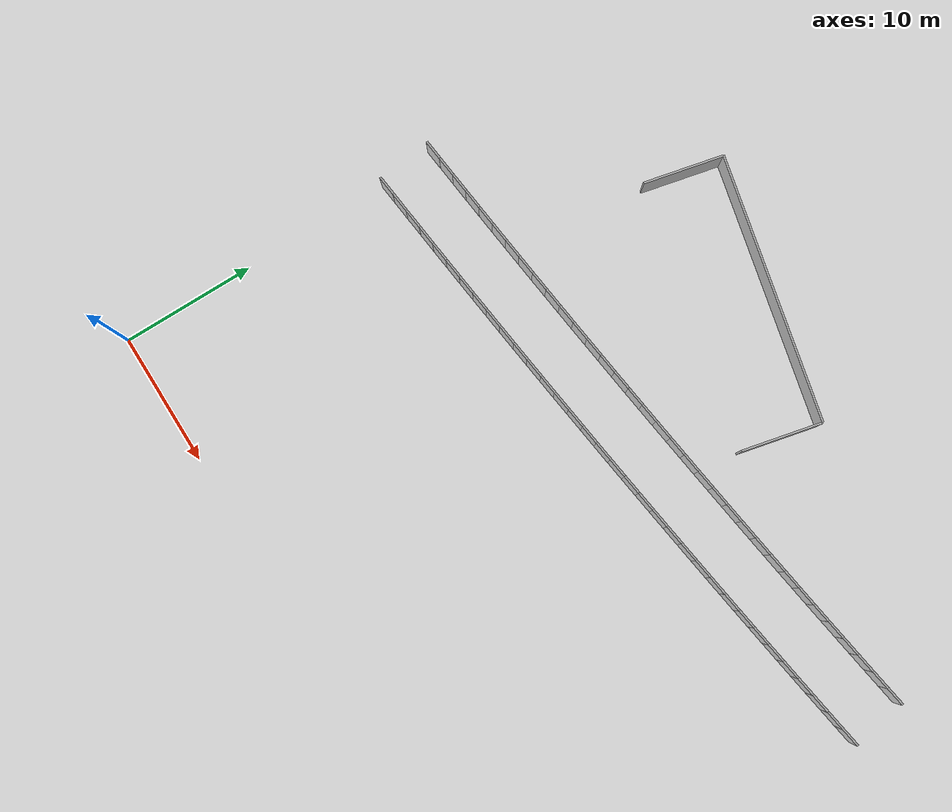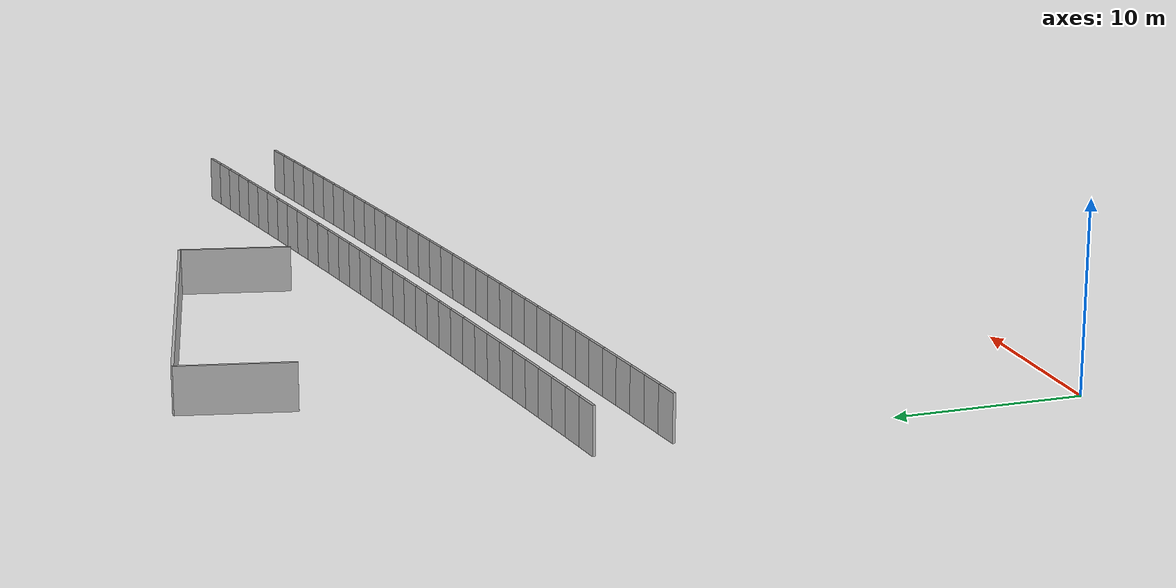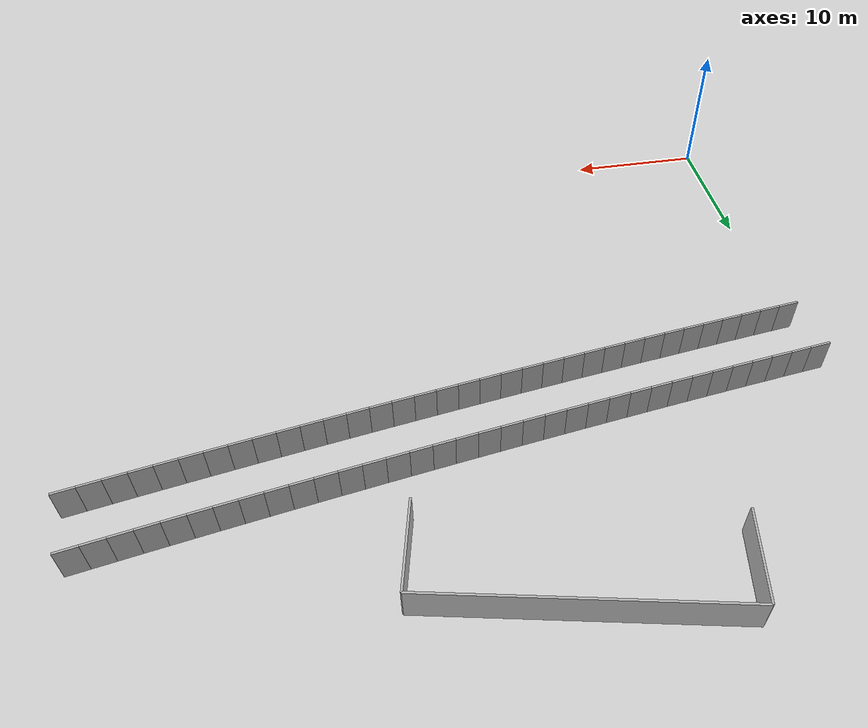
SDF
<?xml version="1.0" ?>
<sdf version="1.6">
  <model name="sps_2803">
    <pose frame="">0 0 0 0 -0 0</pose>
    <static>1</static>
    <self_collide>0</self_collide>
    <allow_auto_disable>0</allow_auto_disable>
    <link name="Wall137">
      <kinematic>0</kinematic>
      <gravity>1</gravity>
      <self_collide>0</self_collide>
      <collision name="collision">
        <geometry>
          <box>
            <size>20 0.15 2.5</size>
          </box>
        </geometry>
        <pose frame="">0 0 0 0 -0 0</pose>
      </collision>
      <visual name="visual">
        <geometry>
          <box>
            <size>20 0.15 2.5</size>
          </box>
        </geometry>
        <pose frame="">0 0 0 0 -0 0</pose>
        <cast_shadows>1</cast_shadows>
        <transparency>0.0</transparency>
      </visual>
      <pose frame="">21.0121 40.5186 1.25 0 0 -0.214245</pose>
    </link>
    <link name="Wall240">
      <kinematic>0</kinematic>
      <gravity>1</gravity>
      <self_collide>0</self_collide>
      <collision name="collision">
        <geometry>
          <box>
            <size>5.9893 0.15 2.5</size>
          </box>
        </geometry>
        <pose frame="">0 0 0 0 -0 0</pose>
      </collision>
      <visual name="visual">
        <geometry>
          <box>
            <size>5.9893 0.15 2.5</size>
          </box>
        </geometry>
        <pose frame="">0 0 0 0 -0 0</pose>
        <cast_shadows>1</cast_shadows>
        <transparency>0.0</transparency>
      </visual>
      <pose frame="">30.1468 35.4663 1.25 0 0 -1.78505</pose>
    </link>
    <link name="Wall374">
      <kinematic>0</kinematic>
      <gravity>1</gravity>
      <self_collide>0</self_collide>
      <collision name="collision">
        <geometry>
          <box>
            <size>5.9893 0.15 2.5</size>
          </box>
        </geometry>
        <pose frame="">0 0 0 0 -0 0</pose>
      </collision>
      <visual name="visual">
        <geometry>
          <box>
            <size>5.9893 0.15 2.5</size>
          </box>
        </geometry>
        <pose frame="">0 0 0 0 -0 0</pose>
        <cast_shadows>1</cast_shadows>
        <transparency>0.0</transparency>
      </visual>
      <pose frame="">10.604 39.7185 1.25 0 0 -1.78505</pose>
    </link>
    <link name="Wall3738">
      <kinematic>0</kinematic>
      <gravity>1</gravity>
      <self_collide>0</self_collide>
      <collision name="collision">
        <geometry>
          <box>
            <size>1.49654 0.15 2.5</size>
          </box>
        </geometry>
        <pose frame="">0 0 0 0 -0 0</pose>
      </collision>
      <visual name="visual">
        <geometry>
          <box>
            <size>1.49654 0.15 2.5</size>
          </box>
        </geometry>
        <pose frame="">0 0 0 0 -0 0</pose>
        <cast_shadows>1</cast_shadows>
        <transparency>0.0</transparency>
      </visual>
      <pose frame="">0.206657 25.4595 1.25 0 -0 0.116539</pose>
    </link>
    <link name="Wall3739">
      <kinematic>0</kinematic>
      <gravity>1</gravity>
      <self_collide>0</self_collide>
      <collision name="collision">
        <geometry>
          <box>
            <size>1.49646 0.15 2.5</size>
          </box>
        </geometry>
        <pose frame="">0 0 0 0 -0 0</pose>
      </collision>
      <visual name="visual">
        <geometry>
          <box>
            <size>1.49646 0.15 2.5</size>
          </box>
        </geometry>
        <pose frame="">0 0 0 0 -0 0</pose>
        <cast_shadows>1</cast_shadows>
        <transparency>0.0</transparency>
      </visual>
      <pose frame="">1.69286 25.6347 1.25 0 -0 0.118148</pose>
    </link>
    <link name="Wall3740">
      <kinematic>0</kinematic>
      <gravity>1</gravity>
      <self_collide>0</self_collide>
      <collision name="collision">
        <geometry>
          <box>
            <size>1.49652 0.15 2.5</size>
          </box>
        </geometry>
        <pose frame="">0 0 0 0 -0 0</pose>
      </collision>
      <visual name="visual">
        <geometry>
          <box>
            <size>1.49652 0.15 2.5</size>
          </box>
        </geometry>
        <pose frame="">0 0 0 0 -0 0</pose>
        <cast_shadows>1</cast_shadows>
        <transparency>0.0</transparency>
      </visual>
      <pose frame="">3.17876 25.8124 1.25 0 -0 0.119868</pose>
    </link>
    <link name="Wall3741">
      <kinematic>0</kinematic>
      <gravity>1</gravity>
      <self_collide>0</self_collide>
      <collision name="collision">
        <geometry>
          <box>
            <size>1.4964 0.15 2.5</size>
          </box>
        </geometry>
        <pose frame="">0 0 0 0 -0 0</pose>
      </collision>
      <visual name="visual">
        <geometry>
          <box>
            <size>1.4964 0.15 2.5</size>
          </box>
        </geometry>
        <pose frame="">0 0 0 0 -0 0</pose>
        <cast_shadows>1</cast_shadows>
        <transparency>0.0</transparency>
      </visual>
      <pose frame="">4.66436 25.9924 1.25 0 -0 0.121274</pose>
    </link>
    <link name="Wall3742">
      <kinematic>0</kinematic>
      <gravity>1</gravity>
      <self_collide>0</self_collide>
      <collision name="collision">
        <geometry>
          <box>
            <size>1.49645 0.15 2.5</size>
          </box>
        </geometry>
        <pose frame="">0 0 0 0 -0 0</pose>
      </collision>
      <visual name="visual">
        <geometry>
          <box>
            <size>1.49645 0.15 2.5</size>
          </box>
        </geometry>
        <pose frame="">0 0 0 0 -0 0</pose>
        <cast_shadows>1</cast_shadows>
        <transparency>0.0</transparency>
      </visual>
      <pose frame="">6.14965 26.1746 1.25 0 -0 0.122873</pose>
    </link>
    <link name="Wall3743">
      <kinematic>0</kinematic>
      <gravity>1</gravity>
      <self_collide>0</self_collide>
      <collision name="collision">
        <geometry>
          <box>
            <size>1.4964 0.15 2.5</size>
          </box>
        </geometry>
        <pose frame="">0 0 0 0 -0 0</pose>
      </collision>
      <visual name="visual">
        <geometry>
          <box>
            <size>1.4964 0.15 2.5</size>
          </box>
        </geometry>
        <pose frame="">0 0 0 0 -0 0</pose>
        <cast_shadows>1</cast_shadows>
        <transparency>0.0</transparency>
      </visual>
      <pose frame="">7.63464 26.3593 1.25 0 -0 0.124603</pose>
    </link>
    <link name="Wall3744">
      <kinematic>0</kinematic>
      <gravity>1</gravity>
      <self_collide>0</self_collide>
      <collision name="collision">
        <geometry>
          <box>
            <size>1.49666 0.15 2.5</size>
          </box>
        </geometry>
        <pose frame="">0 0 0 0 -0 0</pose>
      </collision>
      <visual name="visual">
        <geometry>
          <box>
            <size>1.49666 0.15 2.5</size>
          </box>
        </geometry>
        <pose frame="">0 0 0 0 -0 0</pose>
        <cast_shadows>1</cast_shadows>
        <transparency>0.0</transparency>
      </visual>
      <pose frame="">9.11944 26.5463 1.25 0 -0 0.125938</pose>
    </link>
    <link name="Wall3745">
      <kinematic>0</kinematic>
      <gravity>1</gravity>
      <self_collide>0</self_collide>
      <collision name="collision">
        <geometry>
          <box>
            <size>1.49662 0.15 2.5</size>
          </box>
        </geometry>
        <pose frame="">0 0 0 0 -0 0</pose>
      </collision>
      <visual name="visual">
        <geometry>
          <box>
            <size>1.49662 0.15 2.5</size>
          </box>
        </geometry>
        <pose frame="">0 0 0 0 -0 0</pose>
        <cast_shadows>1</cast_shadows>
        <transparency>0.0</transparency>
      </visual>
      <pose frame="">10.6041 26.7356 1.25 0 -0 0.127709</pose>
    </link>
    <link name="Wall3746">
      <kinematic>0</kinematic>
      <gravity>1</gravity>
      <self_collide>0</self_collide>
      <collision name="collision">
        <geometry>
          <box>
            <size>1.49651 0.15 2.5</size>
          </box>
        </geometry>
        <pose frame="">0 0 0 0 -0 0</pose>
      </collision>
      <visual name="visual">
        <geometry>
          <box>
            <size>1.49651 0.15 2.5</size>
          </box>
        </geometry>
        <pose frame="">0 0 0 0 -0 0</pose>
        <cast_shadows>1</cast_shadows>
        <transparency>0.0</transparency>
      </visual>
      <pose frame="">12.0883 26.9274 1.25 0 -0 0.129323</pose>
    </link>
    <link name="Wall3747">
      <kinematic>0</kinematic>
      <gravity>1</gravity>
      <self_collide>0</self_collide>
      <collision name="collision">
        <geometry>
          <box>
            <size>1.49655 0.15 2.5</size>
          </box>
        </geometry>
        <pose frame="">0 0 0 0 -0 0</pose>
      </collision>
      <visual name="visual">
        <geometry>
          <box>
            <size>1.49655 0.15 2.5</size>
          </box>
        </geometry>
        <pose frame="">0 0 0 0 -0 0</pose>
        <cast_shadows>1</cast_shadows>
        <transparency>0.0</transparency>
      </visual>
      <pose frame="">13.5722 27.1215 1.25 0 -0 0.1308</pose>
    </link>
    <link name="Wall3748">
      <kinematic>0</kinematic>
      <gravity>1</gravity>
      <self_collide>0</self_collide>
      <collision name="collision">
        <geometry>
          <box>
            <size>1.49651 0.15 2.5</size>
          </box>
        </geometry>
        <pose frame="">0 0 0 0 -0 0</pose>
      </collision>
      <visual name="visual">
        <geometry>
          <box>
            <size>1.49651 0.15 2.5</size>
          </box>
        </geometry>
        <pose frame="">0 0 0 0 -0 0</pose>
        <cast_shadows>1</cast_shadows>
        <transparency>0.0</transparency>
      </visual>
      <pose frame="">15.0557 27.3179 1.25 0 -0 0.132449</pose>
    </link>
    <link name="Wall3749">
      <kinematic>0</kinematic>
      <gravity>1</gravity>
      <self_collide>0</self_collide>
      <collision name="collision">
        <geometry>
          <box>
            <size>1.49664 0.15 2.5</size>
          </box>
        </geometry>
        <pose frame="">0 0 0 0 -0 0</pose>
      </collision>
      <visual name="visual">
        <geometry>
          <box>
            <size>1.49664 0.15 2.5</size>
          </box>
        </geometry>
        <pose frame="">0 0 0 0 -0 0</pose>
        <cast_shadows>1</cast_shadows>
        <transparency>0.0</transparency>
      </visual>
      <pose frame="">16.5391 27.5167 1.25 0 -0 0.134042</pose>
    </link>
    <link name="Wall3750">
      <kinematic>0</kinematic>
      <gravity>1</gravity>
      <self_collide>0</self_collide>
      <collision name="collision">
        <geometry>
          <box>
            <size>1.49651 0.15 2.5</size>
          </box>
        </geometry>
        <pose frame="">0 0 0 0 -0 0</pose>
      </collision>
      <visual name="visual">
        <geometry>
          <box>
            <size>1.49651 0.15 2.5</size>
          </box>
        </geometry>
        <pose frame="">0 0 0 0 -0 0</pose>
        <cast_shadows>1</cast_shadows>
        <transparency>0.0</transparency>
      </visual>
      <pose frame="">18.0221 27.7178 1.25 0 -0 0.135535</pose>
    </link>
    <link name="Wall3751">
      <kinematic>0</kinematic>
      <gravity>1</gravity>
      <self_collide>0</self_collide>
      <collision name="collision">
        <geometry>
          <box>
            <size>1.4965 0.15 2.5</size>
          </box>
        </geometry>
        <pose frame="">0 0 0 0 -0 0</pose>
      </collision>
      <visual name="visual">
        <geometry>
          <box>
            <size>1.4965 0.15 2.5</size>
          </box>
        </geometry>
        <pose frame="">0 0 0 0 -0 0</pose>
        <cast_shadows>1</cast_shadows>
        <transparency>0.0</transparency>
      </visual>
      <pose frame="">19.5047 27.9213 1.25 0 -0 0.137265</pose>
    </link>
    <link name="Wall3752">
      <kinematic>0</kinematic>
      <gravity>1</gravity>
      <self_collide>0</self_collide>
      <collision name="collision">
        <geometry>
          <box>
            <size>1.49656 0.15 2.5</size>
          </box>
        </geometry>
        <pose frame="">0 0 0 0 -0 0</pose>
      </collision>
      <visual name="visual">
        <geometry>
          <box>
            <size>1.49656 0.15 2.5</size>
          </box>
        </geometry>
        <pose frame="">0 0 0 0 -0 0</pose>
        <cast_shadows>1</cast_shadows>
        <transparency>0.0</transparency>
      </visual>
      <pose frame="">20.987 28.1272 1.25 0 -0 0.138742</pose>
    </link>
    <link name="Wall3753">
      <kinematic>0</kinematic>
      <gravity>1</gravity>
      <self_collide>0</self_collide>
      <collision name="collision">
        <geometry>
          <box>
            <size>1.49654 0.15 2.5</size>
          </box>
        </geometry>
        <pose frame="">0 0 0 0 -0 0</pose>
      </collision>
      <visual name="visual">
        <geometry>
          <box>
            <size>1.49654 0.15 2.5</size>
          </box>
        </geometry>
        <pose frame="">0 0 0 0 -0 0</pose>
        <cast_shadows>1</cast_shadows>
        <transparency>0.0</transparency>
      </visual>
      <pose frame="">22.469 28.3354 1.25 0 -0 0.140392</pose>
    </link>
    <link name="Wall3754">
      <kinematic>0</kinematic>
      <gravity>1</gravity>
      <self_collide>0</self_collide>
      <collision name="collision">
        <geometry>
          <box>
            <size>1.49642 0.15 2.5</size>
          </box>
        </geometry>
        <pose frame="">0 0 0 0 -0 0</pose>
      </collision>
      <visual name="visual">
        <geometry>
          <box>
            <size>1.49642 0.15 2.5</size>
          </box>
        </geometry>
        <pose frame="">0 0 0 0 -0 0</pose>
        <cast_shadows>1</cast_shadows>
        <transparency>0.0</transparency>
      </visual>
      <pose frame="">23.9506 28.5459 1.25 0 -0 0.141886</pose>
    </link>
    <link name="Wall3755">
      <kinematic>0</kinematic>
      <gravity>1</gravity>
      <self_collide>0</self_collide>
      <collision name="collision">
        <geometry>
          <box>
            <size>1.49658 0.15 2.5</size>
          </box>
        </geometry>
        <pose frame="">0 0 0 0 -0 0</pose>
      </collision>
      <visual name="visual">
        <geometry>
          <box>
            <size>1.49658 0.15 2.5</size>
          </box>
        </geometry>
        <pose frame="">0 0 0 0 -0 0</pose>
        <cast_shadows>1</cast_shadows>
        <transparency>0.0</transparency>
      </visual>
      <pose frame="">25.4318 28.7587 1.25 0 -0 0.143477</pose>
    </link>
    <link name="Wall3756">
      <kinematic>0</kinematic>
      <gravity>1</gravity>
      <self_collide>0</self_collide>
      <collision name="collision">
        <geometry>
          <box>
            <size>1.49659 0.15 2.5</size>
          </box>
        </geometry>
        <pose frame="">0 0 0 0 -0 0</pose>
      </collision>
      <visual name="visual">
        <geometry>
          <box>
            <size>1.49659 0.15 2.5</size>
          </box>
        </geometry>
        <pose frame="">0 0 0 0 -0 0</pose>
        <cast_shadows>1</cast_shadows>
        <transparency>0.0</transparency>
      </visual>
      <pose frame="">26.9129 28.974 1.25 0 -0 0.145248</pose>
    </link>
    <link name="Wall3757">
      <kinematic>0</kinematic>
      <gravity>1</gravity>
      <self_collide>0</self_collide>
      <collision name="collision">
        <geometry>
          <box>
            <size>1.49665 0.15 2.5</size>
          </box>
        </geometry>
        <pose frame="">0 0 0 0 -0 0</pose>
      </collision>
      <visual name="visual">
        <geometry>
          <box>
            <size>1.49665 0.15 2.5</size>
          </box>
        </geometry>
        <pose frame="">0 0 0 0 -0 0</pose>
        <cast_shadows>1</cast_shadows>
        <transparency>0.0</transparency>
      </visual>
      <pose frame="">28.3936 29.1916 1.25 0 -0 0.146603</pose>
    </link>
    <link name="Wall3758">
      <kinematic>0</kinematic>
      <gravity>1</gravity>
      <self_collide>0</self_collide>
      <collision name="collision">
        <geometry>
          <box>
            <size>1.4966 0.15 2.5</size>
          </box>
        </geometry>
        <pose frame="">0 0 0 0 -0 0</pose>
      </collision>
      <visual name="visual">
        <geometry>
          <box>
            <size>1.4966 0.15 2.5</size>
          </box>
        </geometry>
        <pose frame="">0 0 0 0 -0 0</pose>
        <cast_shadows>1</cast_shadows>
        <transparency>0.0</transparency>
      </visual>
      <pose frame="">29.874 29.4115 1.25 0 -0 0.148339</pose>
    </link>
    <link name="Wall3759">
      <kinematic>0</kinematic>
      <gravity>1</gravity>
      <self_collide>0</self_collide>
      <collision name="collision">
        <geometry>
          <box>
            <size>1.49638 0.15 2.5</size>
          </box>
        </geometry>
        <pose frame="">0 0 0 0 -0 0</pose>
      </collision>
      <visual name="visual">
        <geometry>
          <box>
            <size>1.49638 0.15 2.5</size>
          </box>
        </geometry>
        <pose frame="">0 0 0 0 -0 0</pose>
        <cast_shadows>1</cast_shadows>
        <transparency>0.0</transparency>
      </visual>
      <pose frame="">31.3538 29.6338 1.25 0 -0 0.149846</pose>
    </link>
    <link name="Wall3760">
      <kinematic>0</kinematic>
      <gravity>1</gravity>
      <self_collide>0</self_collide>
      <collision name="collision">
        <geometry>
          <box>
            <size>1.49656 0.15 2.5</size>
          </box>
        </geometry>
        <pose frame="">0 0 0 0 -0 0</pose>
      </collision>
      <visual name="visual">
        <geometry>
          <box>
            <size>1.49656 0.15 2.5</size>
          </box>
        </geometry>
        <pose frame="">0 0 0 0 -0 0</pose>
        <cast_shadows>1</cast_shadows>
        <transparency>0.0</transparency>
      </visual>
      <pose frame="">32.8334 29.8584 1.25 0 -0 0.151437</pose>
    </link>
    <link name="Wall3761">
      <kinematic>0</kinematic>
      <gravity>1</gravity>
      <self_collide>0</self_collide>
      <collision name="collision">
        <geometry>
          <box>
            <size>1.49651 0.15 2.5</size>
          </box>
        </geometry>
        <pose frame="">0 0 0 0 -0 0</pose>
      </collision>
      <visual name="visual">
        <geometry>
          <box>
            <size>1.49651 0.15 2.5</size>
          </box>
        </geometry>
        <pose frame="">0 0 0 0 -0 0</pose>
        <cast_shadows>1</cast_shadows>
        <transparency>0.0</transparency>
      </visual>
      <pose frame="">34.3126 30.0854 1.25 0 -0 0.153093</pose>
    </link>
    <link name="Wall3762">
      <kinematic>0</kinematic>
      <gravity>1</gravity>
      <self_collide>0</self_collide>
      <collision name="collision">
        <geometry>
          <box>
            <size>1.49642 0.15 2.5</size>
          </box>
        </geometry>
        <pose frame="">0 0 0 0 -0 0</pose>
      </collision>
      <visual name="visual">
        <geometry>
          <box>
            <size>1.49642 0.15 2.5</size>
          </box>
        </geometry>
        <pose frame="">0 0 0 0 -0 0</pose>
        <cast_shadows>1</cast_shadows>
        <transparency>0.0</transparency>
      </visual>
      <pose frame="">35.7914 30.3147 1.25 0 -0 0.154587</pose>
    </link>
    <link name="Wall3763">
      <kinematic>0</kinematic>
      <gravity>1</gravity>
      <self_collide>0</self_collide>
      <collision name="collision">
        <geometry>
          <box>
            <size>1.49661 0.15 2.5</size>
          </box>
        </geometry>
        <pose frame="">0 0 0 0 -0 0</pose>
      </collision>
      <visual name="visual">
        <geometry>
          <box>
            <size>1.49661 0.15 2.5</size>
          </box>
        </geometry>
        <pose frame="">0 0 0 0 -0 0</pose>
        <cast_shadows>1</cast_shadows>
        <transparency>0.0</transparency>
      </visual>
      <pose frame="">37.2699 30.5463 1.25 0 -0 0.156178</pose>
    </link>
    <link name="Wall3764">
      <kinematic>0</kinematic>
      <gravity>1</gravity>
      <self_collide>0</self_collide>
      <collision name="collision">
        <geometry>
          <box>
            <size>1.4966 0.15 2.5</size>
          </box>
        </geometry>
        <pose frame="">0 0 0 0 -0 0</pose>
      </collision>
      <visual name="visual">
        <geometry>
          <box>
            <size>1.4966 0.15 2.5</size>
          </box>
        </geometry>
        <pose frame="">0 0 0 0 -0 0</pose>
        <cast_shadows>1</cast_shadows>
        <transparency>0.0</transparency>
      </visual>
      <pose frame="">38.7481 30.7802 1.25 0 -0 0.157706</pose>
    </link>
    <link name="Wall3765">
      <kinematic>0</kinematic>
      <gravity>1</gravity>
      <self_collide>0</self_collide>
      <collision name="collision">
        <geometry>
          <box>
            <size>1.49657 0.15 2.5</size>
          </box>
        </geometry>
        <pose frame="">0 0 0 0 -0 0</pose>
      </collision>
      <visual name="visual">
        <geometry>
          <box>
            <size>1.49657 0.15 2.5</size>
          </box>
        </geometry>
        <pose frame="">0 0 0 0 -0 0</pose>
        <cast_shadows>1</cast_shadows>
        <transparency>0.0</transparency>
      </visual>
      <pose frame="">40.2259 31.0165 1.25 0 -0 0.159403</pose>
    </link>
    <link name="Wall3766">
      <kinematic>0</kinematic>
      <gravity>1</gravity>
      <self_collide>0</self_collide>
      <collision name="collision">
        <geometry>
          <box>
            <size>1.49651 0.15 2.5</size>
          </box>
        </geometry>
        <pose frame="">0 0 0 0 -0 0</pose>
      </collision>
      <visual name="visual">
        <geometry>
          <box>
            <size>1.49651 0.15 2.5</size>
          </box>
        </geometry>
        <pose frame="">0 0 0 0 -0 0</pose>
        <cast_shadows>1</cast_shadows>
        <transparency>0.0</transparency>
      </visual>
      <pose frame="">41.7033 31.2552 1.25 0 -0 0.160938</pose>
    </link>
    <link name="Wall3767">
      <kinematic>0</kinematic>
      <gravity>1</gravity>
      <self_collide>0</self_collide>
      <collision name="collision">
        <geometry>
          <box>
            <size>1.49653 0.15 2.5</size>
          </box>
        </geometry>
        <pose frame="">0 0 0 0 -0 0</pose>
      </collision>
      <visual name="visual">
        <geometry>
          <box>
            <size>1.49653 0.15 2.5</size>
          </box>
        </geometry>
        <pose frame="">0 0 0 0 -0 0</pose>
        <cast_shadows>1</cast_shadows>
        <transparency>0.0</transparency>
      </visual>
      <pose frame="">43.1803 31.4962 1.25 0 -0 0.162547</pose>
    </link>
    <link name="Wall3768">
      <kinematic>0</kinematic>
      <gravity>1</gravity>
      <self_collide>0</self_collide>
      <collision name="collision">
        <geometry>
          <box>
            <size>1.49648 0.15 2.5</size>
          </box>
        </geometry>
        <pose frame="">0 0 0 0 -0 0</pose>
      </collision>
      <visual name="visual">
        <geometry>
          <box>
            <size>1.49648 0.15 2.5</size>
          </box>
        </geometry>
        <pose frame="">0 0 0 0 -0 0</pose>
        <cast_shadows>1</cast_shadows>
        <transparency>0.0</transparency>
      </visual>
      <pose frame="">44.6569 31.7395 1.25 0 -0 0.164083</pose>
    </link>
    <link name="Wall3769">
      <kinematic>0</kinematic>
      <gravity>1</gravity>
      <self_collide>0</self_collide>
      <collision name="collision">
        <geometry>
          <box>
            <size>1.4965 0.15 2.5</size>
          </box>
        </geometry>
        <pose frame="">0 0 0 0 -0 0</pose>
      </collision>
      <visual name="visual">
        <geometry>
          <box>
            <size>1.4965 0.15 2.5</size>
          </box>
        </geometry>
        <pose frame="">0 0 0 0 -0 0</pose>
        <cast_shadows>1</cast_shadows>
        <transparency>0.0</transparency>
      </visual>
      <pose frame="">46.133 31.9851 1.25 0 -0 0.165652</pose>
    </link>
    <link name="Wall3770">
      <kinematic>0</kinematic>
      <gravity>1</gravity>
      <self_collide>0</self_collide>
      <collision name="collision">
        <geometry>
          <box>
            <size>1.49648 0.15 2.5</size>
          </box>
        </geometry>
        <pose frame="">0 0 0 0 -0 0</pose>
      </collision>
      <visual name="visual">
        <geometry>
          <box>
            <size>1.49648 0.15 2.5</size>
          </box>
        </geometry>
        <pose frame="">0 0 0 0 -0 0</pose>
        <cast_shadows>1</cast_shadows>
        <transparency>0.0</transparency>
      </visual>
      <pose frame="">47.6088 32.2331 1.25 0 -0 0.167308</pose>
    </link>
    <link name="Wall3771">
      <kinematic>0</kinematic>
      <gravity>1</gravity>
      <self_collide>0</self_collide>
      <collision name="collision">
        <geometry>
          <box>
            <size>1.49652 0.15 2.5</size>
          </box>
        </geometry>
        <pose frame="">0 0 0 0 -0 0</pose>
      </collision>
      <visual name="visual">
        <geometry>
          <box>
            <size>1.49652 0.15 2.5</size>
          </box>
        </geometry>
        <pose frame="">0 0 0 0 -0 0</pose>
        <cast_shadows>1</cast_shadows>
        <transparency>0.0</transparency>
      </visual>
      <pose frame="">49.0843 32.4835 1.25 0 -0 0.168917</pose>
    </link>
    <link name="Wall7513">
      <kinematic>0</kinematic>
      <gravity>1</gravity>
      <self_collide>0</self_collide>
      <collision name="collision">
        <geometry>
          <box>
            <size>1.5032 0.15 2.5</size>
          </box>
        </geometry>
        <pose frame="">0 0 0 0 -0 0</pose>
      </collision>
      <visual name="visual">
        <geometry>
          <box>
            <size>1.5032 0.15 2.5</size>
          </box>
        </geometry>
        <pose frame="">0 0 0 0 -0 0</pose>
        <cast_shadows>1</cast_shadows>
        <transparency>0.0</transparency>
      </visual>
      <pose frame="">0.691154 21.3476 1.25 0 -0 0.116675</pose>
    </link>
    <link name="Wall7514">
      <kinematic>0</kinematic>
      <gravity>1</gravity>
      <self_collide>0</self_collide>
      <collision name="collision">
        <geometry>
          <box>
            <size>1.5031 0.15 2.5</size>
          </box>
        </geometry>
        <pose frame="">0 0 0 0 -0 0</pose>
      </collision>
      <visual name="visual">
        <geometry>
          <box>
            <size>1.5031 0.15 2.5</size>
          </box>
        </geometry>
        <pose frame="">0 0 0 0 -0 0</pose>
        <cast_shadows>1</cast_shadows>
        <transparency>0.0</transparency>
      </visual>
      <pose frame="">2.18395 21.5237 1.25 0 -0 0.118195</pose>
    </link>
    <link name="Wall7515">
      <kinematic>0</kinematic>
      <gravity>1</gravity>
      <self_collide>0</self_collide>
      <collision name="collision">
        <geometry>
          <box>
            <size>1.50313 0.15 2.5</size>
          </box>
        </geometry>
        <pose frame="">0 0 0 0 -0 0</pose>
      </collision>
      <visual name="visual">
        <geometry>
          <box>
            <size>1.50313 0.15 2.5</size>
          </box>
        </geometry>
        <pose frame="">0 0 0 0 -0 0</pose>
        <cast_shadows>1</cast_shadows>
        <transparency>0.0</transparency>
      </visual>
      <pose frame="">3.67644 21.7021 1.25 0 -0 0.119747</pose>
    </link>
    <link name="Wall7516">
      <kinematic>0</kinematic>
      <gravity>1</gravity>
      <self_collide>0</self_collide>
      <collision name="collision">
        <geometry>
          <box>
            <size>1.50306 0.15 2.5</size>
          </box>
        </geometry>
        <pose frame="">0 0 0 0 -0 0</pose>
      </collision>
      <visual name="visual">
        <geometry>
          <box>
            <size>1.50306 0.15 2.5</size>
          </box>
        </geometry>
        <pose frame="">0 0 0 0 -0 0</pose>
        <cast_shadows>1</cast_shadows>
        <transparency>0.0</transparency>
      </visual>
      <pose frame="">5.16863 21.8829 1.25 0 -0 0.121388</pose>
    </link>
    <link name="Wall7517">
      <kinematic>0</kinematic>
      <gravity>1</gravity>
      <self_collide>0</self_collide>
      <collision name="collision">
        <geometry>
          <box>
            <size>1.50297 0.15 2.5</size>
          </box>
        </geometry>
        <pose frame="">0 0 0 0 -0 0</pose>
      </collision>
      <visual name="visual">
        <geometry>
          <box>
            <size>1.50297 0.15 2.5</size>
          </box>
        </geometry>
        <pose frame="">0 0 0 0 -0 0</pose>
        <cast_shadows>1</cast_shadows>
        <transparency>0.0</transparency>
      </visual>
      <pose frame="">6.66045 22.066 1.25 0 -0 0.122869</pose>
    </link>
    <link name="Wall7518">
      <kinematic>0</kinematic>
      <gravity>1</gravity>
      <self_collide>0</self_collide>
      <collision name="collision">
        <geometry>
          <box>
            <size>1.5032 0.15 2.5</size>
          </box>
        </geometry>
        <pose frame="">0 0 0 0 -0 0</pose>
      </collision>
      <visual name="visual">
        <geometry>
          <box>
            <size>1.5032 0.15 2.5</size>
          </box>
        </geometry>
        <pose frame="">0 0 0 0 -0 0</pose>
        <cast_shadows>1</cast_shadows>
        <transparency>0.0</transparency>
      </visual>
      <pose frame="">8.15206 22.2514 1.25 0 -0 0.124446</pose>
    </link>
    <link name="Wall7519">
      <kinematic>0</kinematic>
      <gravity>1</gravity>
      <self_collide>0</self_collide>
      <collision name="collision">
        <geometry>
          <box>
            <size>1.50296 0.15 2.5</size>
          </box>
        </geometry>
        <pose frame="">0 0 0 0 -0 0</pose>
      </collision>
      <visual name="visual">
        <geometry>
          <box>
            <size>1.50296 0.15 2.5</size>
          </box>
        </geometry>
        <pose frame="">0 0 0 0 -0 0</pose>
        <cast_shadows>1</cast_shadows>
        <transparency>0.0</transparency>
      </visual>
      <pose frame="">9.64336 22.4392 1.25 0 -0 0.126103</pose>
    </link>
    <link name="Wall7520">
      <kinematic>0</kinematic>
      <gravity>1</gravity>
      <self_collide>0</self_collide>
      <collision name="collision">
        <geometry>
          <box>
            <size>1.5032 0.15 2.5</size>
          </box>
        </geometry>
        <pose frame="">0 0 0 0 -0 0</pose>
      </collision>
      <visual name="visual">
        <geometry>
          <box>
            <size>1.5032 0.15 2.5</size>
          </box>
        </geometry>
        <pose frame="">0 0 0 0 -0 0</pose>
        <cast_shadows>1</cast_shadows>
        <transparency>0.0</transparency>
      </visual>
      <pose frame="">11.1344 22.6294 1.25 0 -0 0.127679</pose>
    </link>
    <link name="Wall7521">
      <kinematic>0</kinematic>
      <gravity>1</gravity>
      <self_collide>0</self_collide>
      <collision name="collision">
        <geometry>
          <box>
            <size>1.50314 0.15 2.5</size>
          </box>
        </geometry>
        <pose frame="">0 0 0 0 -0 0</pose>
      </collision>
      <visual name="visual">
        <geometry>
          <box>
            <size>1.50314 0.15 2.5</size>
          </box>
        </geometry>
        <pose frame="">0 0 0 0 -0 0</pose>
        <cast_shadows>1</cast_shadows>
        <transparency>0.0</transparency>
      </visual>
      <pose frame="">12.6251 22.822 1.25 0 -0 0.129281</pose>
    </link>
    <link name="Wall7522">
      <kinematic>0</kinematic>
      <gravity>1</gravity>
      <self_collide>0</self_collide>
      <collision name="collision">
        <geometry>
          <box>
            <size>1.50307 0.15 2.5</size>
          </box>
        </geometry>
        <pose frame="">0 0 0 0 -0 0</pose>
      </collision>
      <visual name="visual">
        <geometry>
          <box>
            <size>1.50307 0.15 2.5</size>
          </box>
        </geometry>
        <pose frame="">0 0 0 0 -0 0</pose>
        <cast_shadows>1</cast_shadows>
        <transparency>0.0</transparency>
      </visual>
      <pose frame="">14.1156 23.0169 1.25 0 -0 0.130762</pose>
    </link>
    <link name="Wall7523">
      <kinematic>0</kinematic>
      <gravity>1</gravity>
      <self_collide>0</self_collide>
      <collision name="collision">
        <geometry>
          <box>
            <size>1.50317 0.15 2.5</size>
          </box>
        </geometry>
        <pose frame="">0 0 0 0 -0 0</pose>
      </collision>
      <visual name="visual">
        <geometry>
          <box>
            <size>1.50317 0.15 2.5</size>
          </box>
        </geometry>
        <pose frame="">0 0 0 0 -0 0</pose>
        <cast_shadows>1</cast_shadows>
        <transparency>0.0</transparency>
      </visual>
      <pose frame="">15.6057 23.2142 1.25 0 -0 0.132514</pose>
    </link>
    <link name="Wall7524">
      <kinematic>0</kinematic>
      <gravity>1</gravity>
      <self_collide>0</self_collide>
      <collision name="collision">
        <geometry>
          <box>
            <size>1.50304 0.15 2.5</size>
          </box>
        </geometry>
        <pose frame="">0 0 0 0 -0 0</pose>
      </collision>
      <visual name="visual">
        <geometry>
          <box>
            <size>1.50304 0.15 2.5</size>
          </box>
        </geometry>
        <pose frame="">0 0 0 0 -0 0</pose>
        <cast_shadows>1</cast_shadows>
        <transparency>0.0</transparency>
      </visual>
      <pose frame="">17.0955 23.4139 1.25 0 -0 0.134001</pose>
    </link>
    <link name="Wall7525">
      <kinematic>0</kinematic>
      <gravity>1</gravity>
      <self_collide>0</self_collide>
      <collision name="collision">
        <geometry>
          <box>
            <size>1.50299 0.15 2.5</size>
          </box>
        </geometry>
        <pose frame="">0 0 0 0 -0 0</pose>
      </collision>
      <visual name="visual">
        <geometry>
          <box>
            <size>1.50299 0.15 2.5</size>
          </box>
        </geometry>
        <pose frame="">0 0 0 0 -0 0</pose>
        <cast_shadows>1</cast_shadows>
        <transparency>0.0</transparency>
      </visual>
      <pose frame="">18.5848 23.6159 1.25 0 -0 0.135603</pose>
    </link>
    <link name="Wall7526">
      <kinematic>0</kinematic>
      <gravity>1</gravity>
      <self_collide>0</self_collide>
      <collision name="collision">
        <geometry>
          <box>
            <size>1.50314 0.15 2.5</size>
          </box>
        </geometry>
        <pose frame="">0 0 0 0 -0 0</pose>
      </collision>
      <visual name="visual">
        <geometry>
          <box>
            <size>1.50314 0.15 2.5</size>
          </box>
        </geometry>
        <pose frame="">0 0 0 0 -0 0</pose>
        <cast_shadows>1</cast_shadows>
        <transparency>0.0</transparency>
      </visual>
      <pose frame="">20.0739 23.8203 1.25 0 -0 0.137228</pose>
    </link>
    <link name="Wall7527">
      <kinematic>0</kinematic>
      <gravity>1</gravity>
      <self_collide>0</self_collide>
      <collision name="collision">
        <geometry>
          <box>
            <size>1.50302 0.15 2.5</size>
          </box>
        </geometry>
        <pose frame="">0 0 0 0 -0 0</pose>
      </collision>
      <visual name="visual">
        <geometry>
          <box>
            <size>1.50302 0.15 2.5</size>
          </box>
        </geometry>
        <pose frame="">0 0 0 0 -0 0</pose>
        <cast_shadows>1</cast_shadows>
        <transparency>0.0</transparency>
      </visual>
      <pose frame="">21.5627 24.027 1.25 0 -0 0.138675</pose>
    </link>
    <link name="Wall7528">
      <kinematic>0</kinematic>
      <gravity>1</gravity>
      <self_collide>0</self_collide>
      <collision name="collision">
        <geometry>
          <box>
            <size>1.50321 0.15 2.5</size>
          </box>
        </geometry>
        <pose frame="">0 0 0 0 -0 0</pose>
      </collision>
      <visual name="visual">
        <geometry>
          <box>
            <size>1.50321 0.15 2.5</size>
          </box>
        </geometry>
        <pose frame="">0 0 0 0 -0 0</pose>
        <cast_shadows>1</cast_shadows>
        <transparency>0.0</transparency>
      </visual>
      <pose frame="">23.0512 24.2361 1.25 0 -0 0.140462</pose>
    </link>
    <link name="Wall7529">
      <kinematic>0</kinematic>
      <gravity>1</gravity>
      <self_collide>0</self_collide>
      <collision name="collision">
        <geometry>
          <box>
            <size>1.5029 0.15 2.5</size>
          </box>
        </geometry>
        <pose frame="">0 0 0 0 -0 0</pose>
      </collision>
      <visual name="visual">
        <geometry>
          <box>
            <size>1.5029 0.15 2.5</size>
          </box>
        </geometry>
        <pose frame="">0 0 0 0 -0 0</pose>
        <cast_shadows>1</cast_shadows>
        <transparency>0.0</transparency>
      </visual>
      <pose frame="">24.5393 24.4476 1.25 0 -0 0.141926</pose>
    </link>
    <link name="Wall7530">
      <kinematic>0</kinematic>
      <gravity>1</gravity>
      <self_collide>0</self_collide>
      <collision name="collision">
        <geometry>
          <box>
            <size>1.5033 0.15 2.5</size>
          </box>
        </geometry>
        <pose frame="">0 0 0 0 -0 0</pose>
      </collision>
      <visual name="visual">
        <geometry>
          <box>
            <size>1.5033 0.15 2.5</size>
          </box>
        </geometry>
        <pose frame="">0 0 0 0 -0 0</pose>
        <cast_shadows>1</cast_shadows>
        <transparency>0.0</transparency>
      </visual>
      <pose frame="">26.0272 24.6614 1.25 0 -0 0.143488</pose>
    </link>
    <link name="Wall7531">
      <kinematic>0</kinematic>
      <gravity>1</gravity>
      <self_collide>0</self_collide>
      <collision name="collision">
        <geometry>
          <box>
            <size>1.50299 0.15 2.5</size>
          </box>
        </geometry>
        <pose frame="">0 0 0 0 -0 0</pose>
      </collision>
      <visual name="visual">
        <geometry>
          <box>
            <size>1.50299 0.15 2.5</size>
          </box>
        </geometry>
        <pose frame="">0 0 0 0 -0 0</pose>
        <cast_shadows>1</cast_shadows>
        <transparency>0.0</transparency>
      </visual>
      <pose frame="">27.5147 24.8776 1.25 0 -0 0.145159</pose>
    </link>
    <link name="Wall7532">
      <kinematic>0</kinematic>
      <gravity>1</gravity>
      <self_collide>0</self_collide>
      <collision name="collision">
        <geometry>
          <box>
            <size>1.50313 0.15 2.5</size>
          </box>
        </geometry>
        <pose frame="">0 0 0 0 -0 0</pose>
      </collision>
      <visual name="visual">
        <geometry>
          <box>
            <size>1.50313 0.15 2.5</size>
          </box>
        </geometry>
        <pose frame="">0 0 0 0 -0 0</pose>
        <cast_shadows>1</cast_shadows>
        <transparency>0.0</transparency>
      </visual>
      <pose frame="">29.0018 25.0961 1.25 0 -0 0.146623</pose>
    </link>
    <link name="Wall7533">
      <kinematic>0</kinematic>
      <gravity>1</gravity>
      <self_collide>0</self_collide>
      <collision name="collision">
        <geometry>
          <box>
            <size>1.50306 0.15 2.5</size>
          </box>
        </geometry>
        <pose frame="">0 0 0 0 -0 0</pose>
      </collision>
      <visual name="visual">
        <geometry>
          <box>
            <size>1.50306 0.15 2.5</size>
          </box>
        </geometry>
        <pose frame="">0 0 0 0 -0 0</pose>
        <cast_shadows>1</cast_shadows>
        <transparency>0.0</transparency>
      </visual>
      <pose frame="">30.4885 25.3169 1.25 0 -0 0.148231</pose>
    </link>
    <link name="Wall7534">
      <kinematic>0</kinematic>
      <gravity>1</gravity>
      <self_collide>0</self_collide>
      <collision name="collision">
        <geometry>
          <box>
            <size>1.50287 0.15 2.5</size>
          </box>
        </geometry>
        <pose frame="">0 0 0 0 -0 0</pose>
      </collision>
      <visual name="visual">
        <geometry>
          <box>
            <size>1.50287 0.15 2.5</size>
          </box>
        </geometry>
        <pose frame="">0 0 0 0 -0 0</pose>
        <cast_shadows>1</cast_shadows>
        <transparency>0.0</transparency>
      </visual>
      <pose frame="">31.9748 25.5401 1.25 0 -0 0.149892</pose>
    </link>
    <link name="Wall7535">
      <kinematic>0</kinematic>
      <gravity>1</gravity>
      <self_collide>0</self_collide>
      <collision name="collision">
        <geometry>
          <box>
            <size>1.50299 0.15 2.5</size>
          </box>
        </geometry>
        <pose frame="">0 0 0 0 -0 0</pose>
      </collision>
      <visual name="visual">
        <geometry>
          <box>
            <size>1.50299 0.15 2.5</size>
          </box>
        </geometry>
        <pose frame="">0 0 0 0 -0 0</pose>
        <cast_shadows>1</cast_shadows>
        <transparency>0.0</transparency>
      </visual>
      <pose frame="">33.4607 25.7657 1.25 0 -0 0.151482</pose>
    </link>
    <link name="Wall7536">
      <kinematic>0</kinematic>
      <gravity>1</gravity>
      <self_collide>0</self_collide>
      <collision name="collision">
        <geometry>
          <box>
            <size>1.50317 0.15 2.5</size>
          </box>
        </geometry>
        <pose frame="">0 0 0 0 -0 0</pose>
      </collision>
      <visual name="visual">
        <geometry>
          <box>
            <size>1.50317 0.15 2.5</size>
          </box>
        </geometry>
        <pose frame="">0 0 0 0 -0 0</pose>
        <cast_shadows>1</cast_shadows>
        <transparency>0.0</transparency>
      </visual>
      <pose frame="">34.9464 25.9937 1.25 0 -0 0.153066</pose>
    </link>
    <link name="Wall7537">
      <kinematic>0</kinematic>
      <gravity>1</gravity>
      <self_collide>0</self_collide>
      <collision name="collision">
        <geometry>
          <box>
            <size>1.50315 0.15 2.5</size>
          </box>
        </geometry>
        <pose frame="">0 0 0 0 -0 0</pose>
      </collision>
      <visual name="visual">
        <geometry>
          <box>
            <size>1.50315 0.15 2.5</size>
          </box>
        </geometry>
        <pose frame="">0 0 0 0 -0 0</pose>
        <cast_shadows>1</cast_shadows>
        <transparency>0.0</transparency>
      </visual>
      <pose frame="">36.4318 26.224 1.25 0 -0 0.154548</pose>
    </link>
    <link name="Wall7538">
      <kinematic>0</kinematic>
      <gravity>1</gravity>
      <self_collide>0</self_collide>
      <collision name="collision">
        <geometry>
          <box>
            <size>1.5031 0.15 2.5</size>
          </box>
        </geometry>
        <pose frame="">0 0 0 0 -0 0</pose>
      </collision>
      <visual name="visual">
        <geometry>
          <box>
            <size>1.5031 0.15 2.5</size>
          </box>
        </geometry>
        <pose frame="">0 0 0 0 -0 0</pose>
        <cast_shadows>1</cast_shadows>
        <transparency>0.0</transparency>
      </visual>
      <pose frame="">37.9169 26.4566 1.25 0 -0 0.156197</pose>
    </link>
    <link name="Wall7539">
      <kinematic>0</kinematic>
      <gravity>1</gravity>
      <self_collide>0</self_collide>
      <collision name="collision">
        <geometry>
          <box>
            <size>1.50305 0.15 2.5</size>
          </box>
        </geometry>
        <pose frame="">0 0 0 0 -0 0</pose>
      </collision>
      <visual name="visual">
        <geometry>
          <box>
            <size>1.50305 0.15 2.5</size>
          </box>
        </geometry>
        <pose frame="">0 0 0 0 -0 0</pose>
        <cast_shadows>1</cast_shadows>
        <transparency>0.0</transparency>
      </visual>
      <pose frame="">39.4015 26.6916 1.25 0 -0 0.157805</pose>
    </link>
    <link name="Wall7540">
      <kinematic>0</kinematic>
      <gravity>1</gravity>
      <self_collide>0</self_collide>
      <collision name="collision">
        <geometry>
          <box>
            <size>1.50325 0.15 2.5</size>
          </box>
        </geometry>
        <pose frame="">0 0 0 0 -0 0</pose>
      </collision>
      <visual name="visual">
        <geometry>
          <box>
            <size>1.50325 0.15 2.5</size>
          </box>
        </geometry>
        <pose frame="">0 0 0 0 -0 0</pose>
        <cast_shadows>1</cast_shadows>
        <transparency>0.0</transparency>
      </visual>
      <pose frame="">40.8857 26.929 1.25 0 -0 0.159388</pose>
    </link>
    <link name="Wall7541">
      <kinematic>0</kinematic>
      <gravity>1</gravity>
      <self_collide>0</self_collide>
      <collision name="collision">
        <geometry>
          <box>
            <size>1.50305 0.15 2.5</size>
          </box>
        </geometry>
        <pose frame="">0 0 0 0 -0 0</pose>
      </collision>
      <visual name="visual">
        <geometry>
          <box>
            <size>1.50305 0.15 2.5</size>
          </box>
        </geometry>
        <pose frame="">0 0 0 0 -0 0</pose>
        <cast_shadows>1</cast_shadows>
        <transparency>0.0</transparency>
      </visual>
      <pose frame="">42.3697 27.1687 1.25 0 -0 0.160889</pose>
    </link>
    <link name="Wall7542">
      <kinematic>0</kinematic>
      <gravity>1</gravity>
      <self_collide>0</self_collide>
      <collision name="collision">
        <geometry>
          <box>
            <size>1.50297 0.15 2.5</size>
          </box>
        </geometry>
        <pose frame="">0 0 0 0 -0 0</pose>
      </collision>
      <visual name="visual">
        <geometry>
          <box>
            <size>1.50297 0.15 2.5</size>
          </box>
        </geometry>
        <pose frame="">0 0 0 0 -0 0</pose>
        <cast_shadows>1</cast_shadows>
        <transparency>0.0</transparency>
      </visual>
      <pose frame="">43.853 27.4107 1.25 0 -0 0.162545</pose>
    </link>
    <link name="Wall7543">
      <kinematic>0</kinematic>
      <gravity>1</gravity>
      <self_collide>0</self_collide>
      <collision name="collision">
        <geometry>
          <box>
            <size>1.50305 0.15 2.5</size>
          </box>
        </geometry>
        <pose frame="">0 0 0 0 -0 0</pose>
      </collision>
      <visual name="visual">
        <geometry>
          <box>
            <size>1.50305 0.15 2.5</size>
          </box>
        </geometry>
        <pose frame="">0 0 0 0 -0 0</pose>
        <cast_shadows>1</cast_shadows>
        <transparency>0.0</transparency>
      </visual>
      <pose frame="">45.3361 27.6551 1.25 0 -0 0.164141</pose>
    </link>
    <link name="Wall7544">
      <kinematic>0</kinematic>
      <gravity>1</gravity>
      <self_collide>0</self_collide>
      <collision name="collision">
        <geometry>
          <box>
            <size>1.5032 0.15 2.5</size>
          </box>
        </geometry>
        <pose frame="">0 0 0 0 -0 0</pose>
      </collision>
      <visual name="visual">
        <geometry>
          <box>
            <size>1.5032 0.15 2.5</size>
          </box>
        </geometry>
        <pose frame="">0 0 0 0 -0 0</pose>
        <cast_shadows>1</cast_shadows>
        <transparency>0.0</transparency>
      </visual>
      <pose frame="">46.8188 27.9019 1.25 0 -0 0.165729</pose>
    </link>
    <link name="Wall7545">
      <kinematic>0</kinematic>
      <gravity>1</gravity>
      <self_collide>0</self_collide>
      <collision name="collision">
        <geometry>
          <box>
            <size>1.50296 0.15 2.5</size>
          </box>
        </geometry>
        <pose frame="">0 0 0 0 -0 0</pose>
      </collision>
      <visual name="visual">
        <geometry>
          <box>
            <size>1.50296 0.15 2.5</size>
          </box>
        </geometry>
        <pose frame="">0 0 0 0 -0 0</pose>
        <cast_shadows>1</cast_shadows>
        <transparency>0.0</transparency>
      </visual>
      <pose frame="">48.3011 28.151 1.25 0 -0 0.167238</pose>
    </link>
    <link name="Wall7546">
      <kinematic>0</kinematic>
      <gravity>1</gravity>
      <self_collide>0</self_collide>
      <collision name="collision">
        <geometry>
          <box>
            <size>1.50316 0.15 2.5</size>
          </box>
        </geometry>
        <pose frame="">0 0 0 0 -0 0</pose>
      </collision>
      <visual name="visual">
        <geometry>
          <box>
            <size>1.50316 0.15 2.5</size>
          </box>
        </geometry>
        <pose frame="">0 0 0 0 -0 0</pose>
        <cast_shadows>1</cast_shadows>
        <transparency>0.0</transparency>
      </visual>
      <pose frame="">49.783 28.4025 1.25 0 -0 0.168987</pose>
    </link>
  </model>
</sdf>
